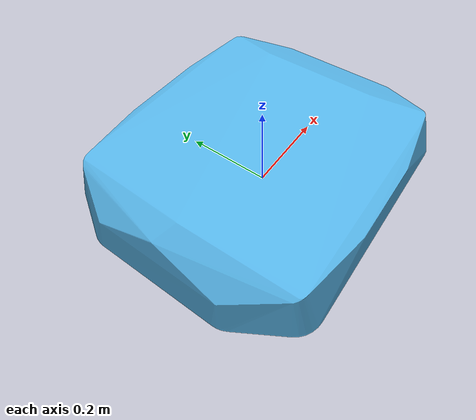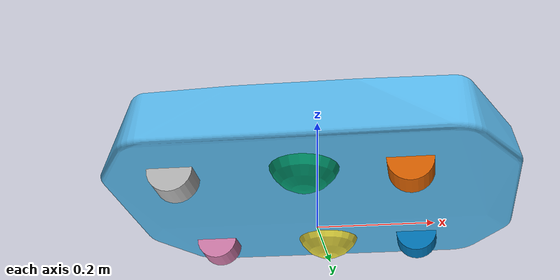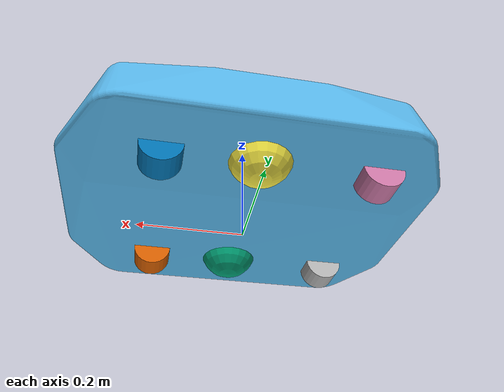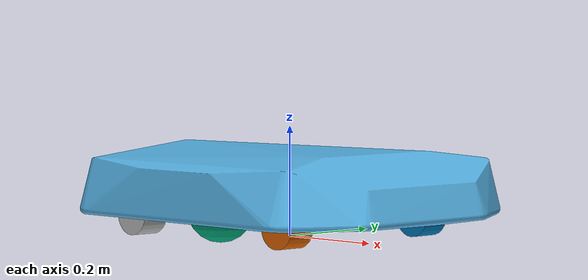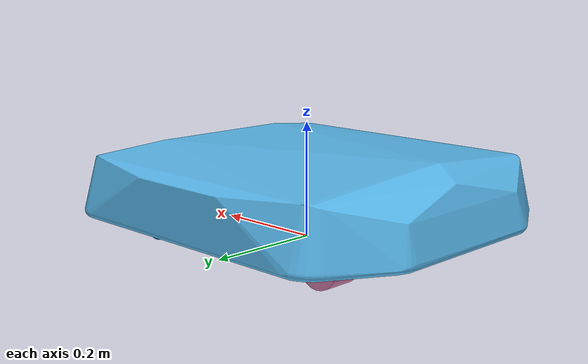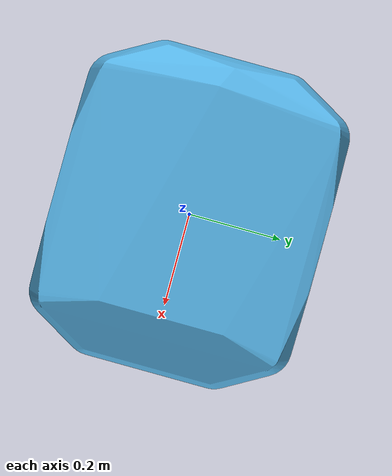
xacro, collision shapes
<?xml version="1.0"?>
<robot name="tracer_agv" xmlns:xacro="http://www.ros.org/wiki/xacro">
  <xacro:arg name="mesh_prefix" default="model://tracer_agv/meshes"/>
  <xacro:arg name="lidar" default="true"/>
  <xacro:arg name="lidar_x" default="0.2125"/>
  <xacro:arg name="lidar_z" default="0.0575"/>  <!-- sobre base_link: 0.0575+0.1425 = 0.20 m sobre el suelo (altura del modelo 2025) -->
  <xacro:arg name="lidar_hz" default="10"/>
  <xacro:arg name="lidar_samples" default="720"/>
  <xacro:arg name="lidar_fov" default="6.283185307"/>
  <xacro:arg name="gz_extras" default="true"/>

  <!-- ===== MEDIDO en las mallas oficiales ===== -->
  <xacro:property name="PI" value="3.14159265358979"/>
  <xacro:property name="ground_z" value="0.1425"/>            <!-- base_link -> suelo: rueda motriz z=-0.082, radio 0.0605 -->
  <xacro:property name="wheel_r" value="0.0605"/>            <!-- tracer_wheel.dae: diametro 0.121 -->
  <xacro:property name="wheel_w" value="0.0844"/>            <!-- tracer_wheel.dae: anchura 0.0844 -->
  <xacro:property name="wheel_y" value="0.17"/>              <!-- 'wheelbase' del fabricante: separacion entre ruedas motrices = 0.34 -->
  <xacro:property name="wheel_z" value="-0.082"/>            <!-- wheel_vertical_offset del fabricante -->
  <xacro:property name="cast_r" value="0.0372"/>             <!-- castor.dae: radio 0.0372, anchura 0.053 -->
  <xacro:property name="cast_w" value="0.053"/>
  <!-- ===== ESTIMADO (no documentado): masas y reparto. Total 30 kg = peso oficial en vacio ===== -->
  <xacro:property name="m_body" value="26.0"/>
  <xacro:property name="m_wheel" value="1.0"/>
  <xacro:property name="m_cast" value="0.5"/>

  <xacro:macro name="cyl_inertia" params="m r l axis">  <!-- cilindro macizo; axis = x|y|z -->
    <xacro:property name="ia" value="${0.5*m*r*r}"/>
    <xacro:property name="it" value="${m*(3*r*r+l*l)/12}"/>
    <xacro:if value="${axis=='y'}"><inertia ixx="${it}" iyy="${ia}" izz="${it}" ixy="0" ixz="0" iyz="0"/></xacro:if>
    <xacro:if value="${axis=='z'}"><inertia ixx="${it}" iyy="${it}" izz="${ia}" ixy="0" ixz="0" iyz="0"/></xacro:if>
  </xacro:macro>

  <link name="base_footprint"/>
  <joint name="base_footprint_joint" type="fixed">
    <origin xyz="0 0 ${ground_z}" rpy="0 0 0"/><parent link="base_footprint"/><child link="base_link"/>
  </joint>

  <link name="base_link">
    <inertial>  <!-- ESTIMADO: caja homogenea 0.685x0.57x0.13 centrada en la caja de la malla (z=-0.043) -->
      <origin xyz="0 0 -0.043" rpy="0 0 0"/><mass value="${m_body}"/>
      <inertia ixx="${m_body*(0.57*0.57+0.13*0.13)/12}" iyy="${m_body*(0.685*0.685+0.13*0.13)/12}" izz="${m_body*(0.685*0.685+0.57*0.57)/12}" ixy="0" ixz="0" iyz="0"/>
    </inertial>
    <visual><origin xyz="0 0 0" rpy="${PI/2} 0 0"/><geometry><mesh filename="$(arg mesh_prefix)/tracer_base_link_no_wheel.dae"/></geometry></visual>
    <collision name="chasis"><origin xyz="0 0 0" rpy="0 0 0"/><geometry><mesh filename="$(arg mesh_prefix)/chasis_colision.obj"/></geometry></collision>
  </link>

  <xacro:macro name="drive_wheel" params="side y flip">
    <link name="${side}_wheel_link">
      <inertial><origin xyz="0 0 0"/><mass value="${m_wheel}"/><xacro:cyl_inertia m="${m_wheel}" r="${wheel_r}" l="${wheel_w}" axis="y"/></inertial>
      <visual><origin xyz="0 0 0" rpy="${flip} 0 0"/><geometry><mesh filename="$(arg mesh_prefix)/tracer_wheel.dae"/></geometry></visual>
      <collision name="rueda"><origin xyz="0 0 0" rpy="0 0 0"/><geometry><sphere radius="${wheel_r}"/></geometry></collision>
    </link>
    <joint name="${side}_wheel" type="continuous">
      <origin xyz="0 ${y} ${wheel_z}" rpy="0 0 0"/><parent link="base_link"/><child link="${side}_wheel_link"/>
      <axis xyz="0 1 0"/><dynamics damping="0.0" friction="0.0"/>
    </joint>
  </xacro:macro>
  <xacro:drive_wheel side="right" y="${-wheel_y}" flip="0"/>
  <xacro:drive_wheel side="left"  y="${wheel_y}"  flip="${PI}"/>   <!-- el fabricante gira 180 deg la malla izquierda -->

  <xacro:macro name="caster" params="name x y">
    <link name="${name}_castor_link">
      <visual><origin xyz="${-0.0218084} 0 -0.067" rpy="${-PI/2} 0 0"/><geometry><mesh filename="$(arg mesh_prefix)/castor.dae"/></geometry></visual>
      <visual><origin xyz="0 0 0" rpy="${-PI/2} 0 0"/><geometry><mesh filename="$(arg mesh_prefix)/castor_joint.dae"/></geometry></visual>
      <inertial><origin xyz="${-0.0218084} 0 -0.067"/><mass value="${m_cast}"/><xacro:cyl_inertia m="${m_cast}" r="${cast_r}" l="${cast_w}" axis="y"/></inertial>
      <collision name="rueda_loca"><origin xyz="${-0.0218084} 0 -0.067" rpy="${PI/2} 0 0"/><geometry><cylinder radius="${cast_r}" length="${cast_w}"/></geometry></collision>
    </link>
    <joint name="${name}_castor_joint" type="fixed">
      <origin xyz="${x} ${y} ${0.03-0.0680886}" rpy="0 0 0"/><parent link="base_link"/><child link="${name}_castor_link"/>
    </joint>
  </xacro:macro>
  <xacro:caster name="fl" x="0.18955" y="${wheel_y}"/>
  <xacro:caster name="fr" x="0.18955" y="${-wheel_y}"/>
  <xacro:caster name="rl" x="-0.18955" y="${wheel_y}"/>
  <xacro:caster name="rr" x="-0.18955" y="${-wheel_y}"/>

  <xacro:if value="$(arg lidar)">
    <link name="laser">
      <visual><geometry><cylinder length="0.07" radius="0.03"/></geometry><material name="lidar_gris"><color rgba="0.2 0.2 0.2 1"/></material></visual>
    </link>
    <joint name="laser_joint" type="fixed"><origin xyz="$(arg lidar_x) 0 $(arg lidar_z)" rpy="0 0 0"/><parent link="base_link"/><child link="laser"/></joint>
  </xacro:if>

  <xacro:if value="$(arg gz_extras)">
    <!-- Friccion: motrices agarran; ruedas locas casi sin friccion (simulan el giro libre de la horquilla) -->
    <gazebo reference="right_wheel_link"><mu1>1.0</mu1><mu2>1.0</mu2><kp>1e6</kp><kd>100</kd></gazebo>
    <gazebo reference="left_wheel_link"><mu1>1.0</mu1><mu2>1.0</mu2><kp>1e6</kp><kd>100</kd></gazebo>
    <xacro:macro name="cast_fric" params="n"><gazebo reference="${n}_castor_link"><mu1>0.02</mu1><mu2>0.02</mu2></gazebo></xacro:macro>
    <xacro:cast_fric n="fl"/><xacro:cast_fric n="fr"/><xacro:cast_fric n="rl"/><xacro:cast_fric n="rr"/>
    <gazebo reference="base_link"><mu1>0.3</mu1><mu2>0.3</mu2></gazebo>
    <gazebo>
      <plugin filename="gz-sim-diff-drive-system" name="gz::sim::systems::DiffDrive">
        <left_joint>left_wheel</left_joint><right_joint>right_wheel</right_joint>
        <wheel_separation>${2*wheel_y}</wheel_separation><wheel_radius>${wheel_r}</wheel_radius>
        <max_linear_velocity>1.6</max_linear_velocity><min_linear_velocity>-1.6</min_linear_velocity>
        <topic>/cmd_vel_seguro</topic>  <!-- entrada protegida por el watchdog (scripts/watchdog_cmd_vel.py); /cmd_vel ya NO llega al DiffDrive --><odom_topic>/odom</odom_topic><tf_topic>/tf</tf_topic>
        <frame_id>odom</frame_id><child_frame_id>base_footprint</child_frame_id>
        <odom_publisher_frequency>50</odom_publisher_frequency>
      </plugin>
      <plugin filename="gz-sim-joint-state-publisher-system" name="gz::sim::systems::JointStatePublisher">
        <topic>/joint_states</topic><joint_name>left_wheel</joint_name><joint_name>right_wheel</joint_name>
      </plugin>
    </gazebo>
    <xacro:if value="$(arg lidar)">
      <gazebo reference="laser">
        <sensor name="lidar" type="gpu_lidar">
          <pose>0 0 0 0 0 0</pose><topic>/scan</topic><gz_frame_id>laser</gz_frame_id>
          <update_rate>$(arg lidar_hz)</update_rate><always_on>true</always_on><visualize>false</visualize>
          <lidar>
            <scan><horizontal><samples>$(arg lidar_samples)</samples><resolution>1</resolution><min_angle>${-PI*0+(-$(arg lidar_fov)/2)}</min_angle><max_angle>${$(arg lidar_fov)/2}</max_angle></horizontal></scan>
            <range><min>0.10</min><max>30.0</max><resolution>0.01</resolution></range>
          </lidar>
        </sensor>
      </gazebo>
    </xacro:if>
  </xacro:if>
</robot>
